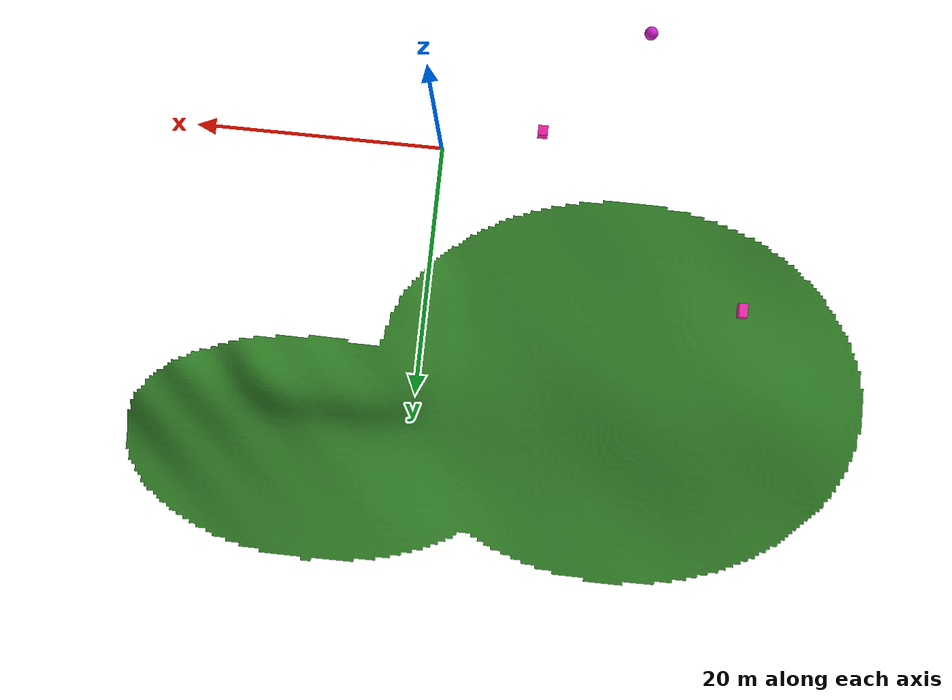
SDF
<sdf version="1.8">
 <world name="semantic_segmentation_world">
  <model name="bare_earth_sloped_terrain_collision">
   <static>true</static>
   <pose>0.000000 0.000000 -1.000000 0.000000 0.000000 0.000000</pose>
   <link name="terrain_collision_link">
    <collision name="terrain_collision">
     <geometry>
      <heightmap>
       <uri>file://complex_terrain_heightmap.png</uri>
       <size>70.0 70.0 4.431373</size>
       <pos>0 0 0</pos>
      </heightmap>
     </geometry>
     <surface><friction><ode><mu>1.15</mu><mu2>1.15</mu2></ode></friction></surface>
    </collision>
   </link>
  </model>
  <model name="grass_terrain">
   <static>true</static>
   <link name="grass_terrain_link">
    <visual name="height_conforming_grass_visual">
     <geometry><mesh><uri>file://complex_grass_surface.obj</uri><scale>1 1 1</scale></mesh></geometry>
     <material>
      <ambient>0.18 0.48 0.14 1</ambient>
      <diffuse>0.18 0.48 0.14 1</diffuse>
      <specular>0.02 0.02 0.02 1</specular>
      <pbr>
       <metal>
        <albedo_map>file://complex_grass_texture.png</albedo_map>
        <roughness>0.92</roughness>
        <metalness>0.0</metalness>
       </metal>
      </pbr>
     </material>
    </visual>
   </link>
   <plugin filename="ignition-gazebo-label-system" name="ignition::gazebo::systems::Label">
    <label>2</label>
   </plugin>
  </model>
  <model name="dynamic_box">
   <static>true</static>
   <pose>-8.000000 -2.000000 0.675473 0.000000 0.000000 0.000000</pose>
   <link name="body">
    <collision name="body_collision">
     <geometry><box><size>0.8 0.8 1.1</size></box></geometry>
     <surface><friction><ode><mu>1.1</mu><mu2>1.1</mu2></ode></friction></surface>
    </collision>
    <visual name="body_visual">
     <geometry><box><size>0.8 0.8 1.1</size></box></geometry>
     <material>
      <ambient>0.95 0.12 0.65 1.0</ambient>
      <diffuse>0.95 0.12 0.65 1.0</diffuse>
      <specular>0.04 0.04 0.04 1</specular>
     </material>
    </visual>
   </link>
   <plugin filename="ignition-gazebo-label-system" name="ignition::gazebo::systems::Label">
    <label>6</label>
   </plugin>
   <plugin filename="libssmi_periodic_motion_system.so" name="semantic_segmentation_husky::PeriodicMotionSystem">
    <offset>15.0000 0.0000 -0.0808</offset>
    <period>28</period>
    <phase>0</phase>
   </plugin>
  </model>
  <model name="dynamic_sphere">
   <static>true</static>
   <pose>-16.000000 -11.000000 1.001477 0.000000 0.000000 0.000000</pose>
   <link name="body">
    <collision name="body_collision">
     <geometry><sphere><radius>0.55</radius></sphere></geometry>
     <surface><friction><ode><mu>1.1</mu><mu2>1.1</mu2></ode></friction></surface>
    </collision>
    <visual name="body_visual">
     <geometry><sphere><radius>0.55</radius></sphere></geometry>
     <material>
      <ambient>0.82 0.12 0.78 1.0</ambient>
      <diffuse>0.82 0.12 0.78 1.0</diffuse>
      <specular>0.04 0.04 0.04 1</specular>
     </material>
    </visual>
   </link>
   <plugin filename="ignition-gazebo-label-system" name="ignition::gazebo::systems::Label">
    <label>6</label>
   </plugin>
   <plugin filename="libssmi_periodic_motion_system.so" name="semantic_segmentation_husky::PeriodicMotionSystem">
    <offset>8.0000 0.0000 -0.1450</offset>
    <period>18</period>
    <phase>3</phase>
   </plugin>
  </model>
  <model name="dynamic_grass_box">
   <static>true</static>
   <pose>-25.000000 11.000000 1.115099 0.000000 0.000000 0.000000</pose>
   <link name="body">
    <collision name="body_collision">
     <geometry><box><size>0.7 1.1 1.0</size></box></geometry>
     <surface><friction><ode><mu>1.1</mu><mu2>1.1</mu2></ode></friction></surface>
    </collision>
    <visual name="body_visual">
     <geometry><box><size>0.7 1.1 1.0</size></box></geometry>
     <material>
      <ambient>0.96 0.16 0.7 1.0</ambient>
      <diffuse>0.96 0.16 0.7 1.0</diffuse>
      <specular>0.04 0.04 0.04 1</specular>
     </material>
    </visual>
   </link>
   <plugin filename="ignition-gazebo-label-system" name="ignition::gazebo::systems::Label">
    <label>6</label>
   </plugin>
   <plugin filename="libssmi_periodic_motion_system.so" name="semantic_segmentation_husky::PeriodicMotionSystem">
    <offset>11.0000 0.0000 -0.4263</offset>
    <period>38</period>
    <phase>11</phase>
   </plugin>
  </model>
 </world>
</sdf>
